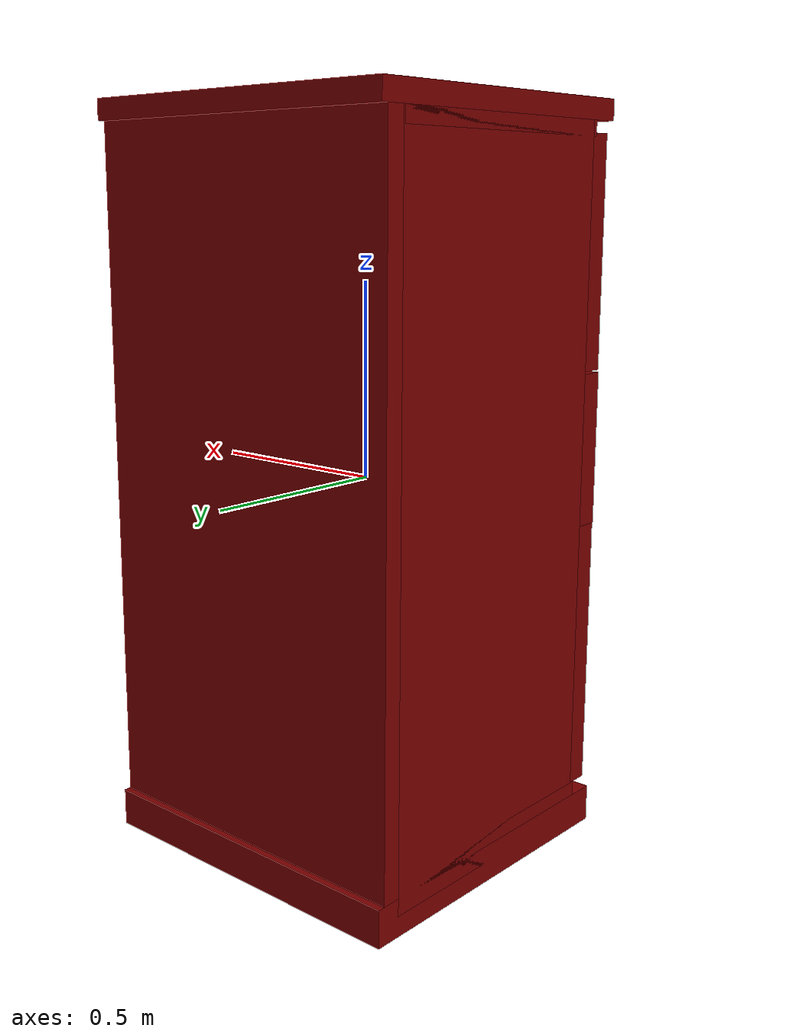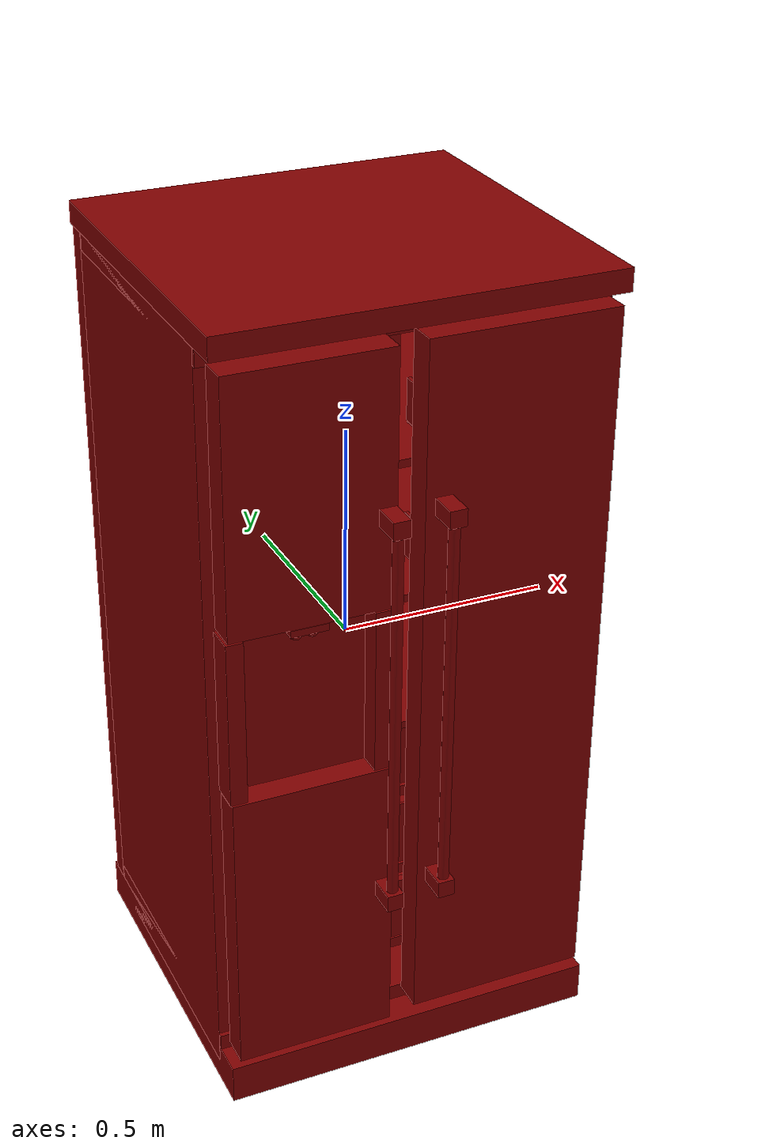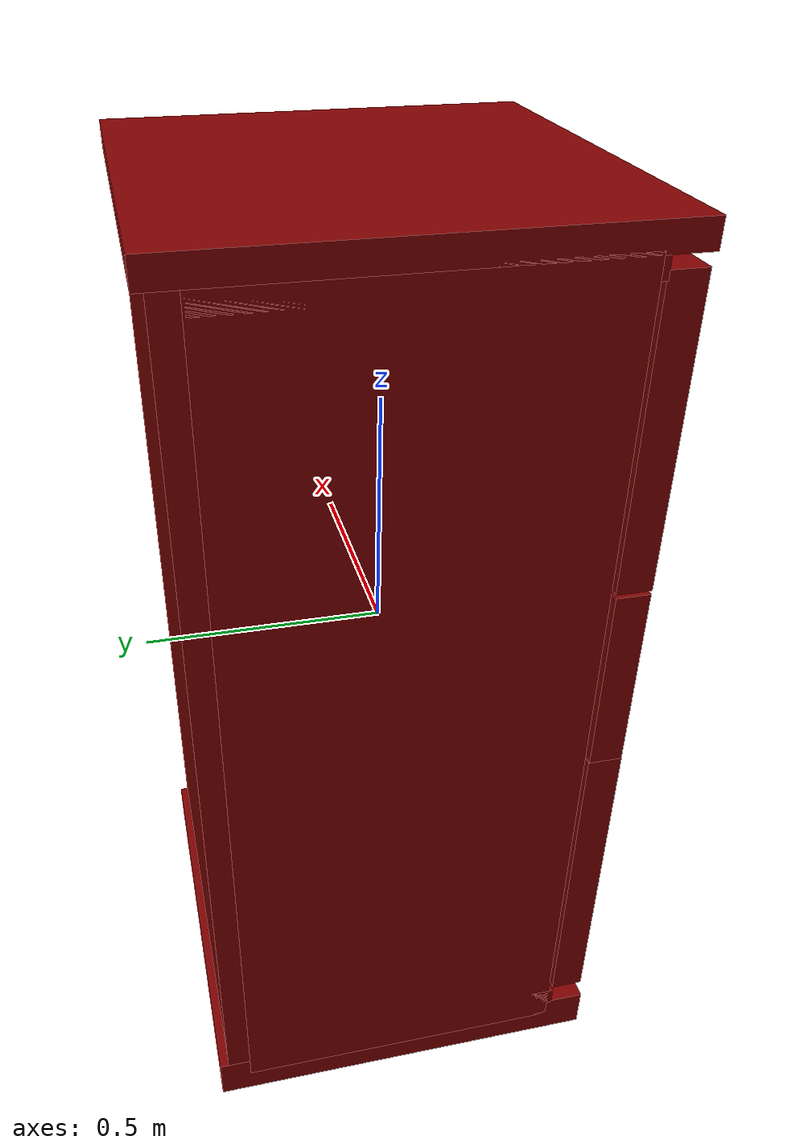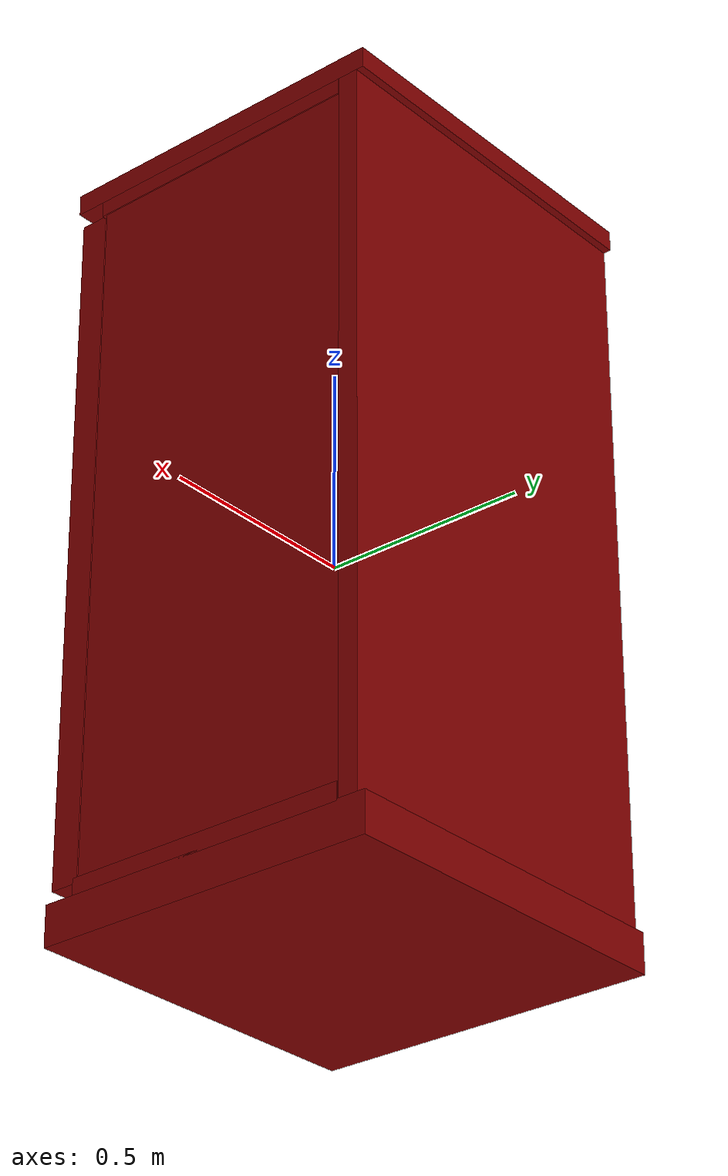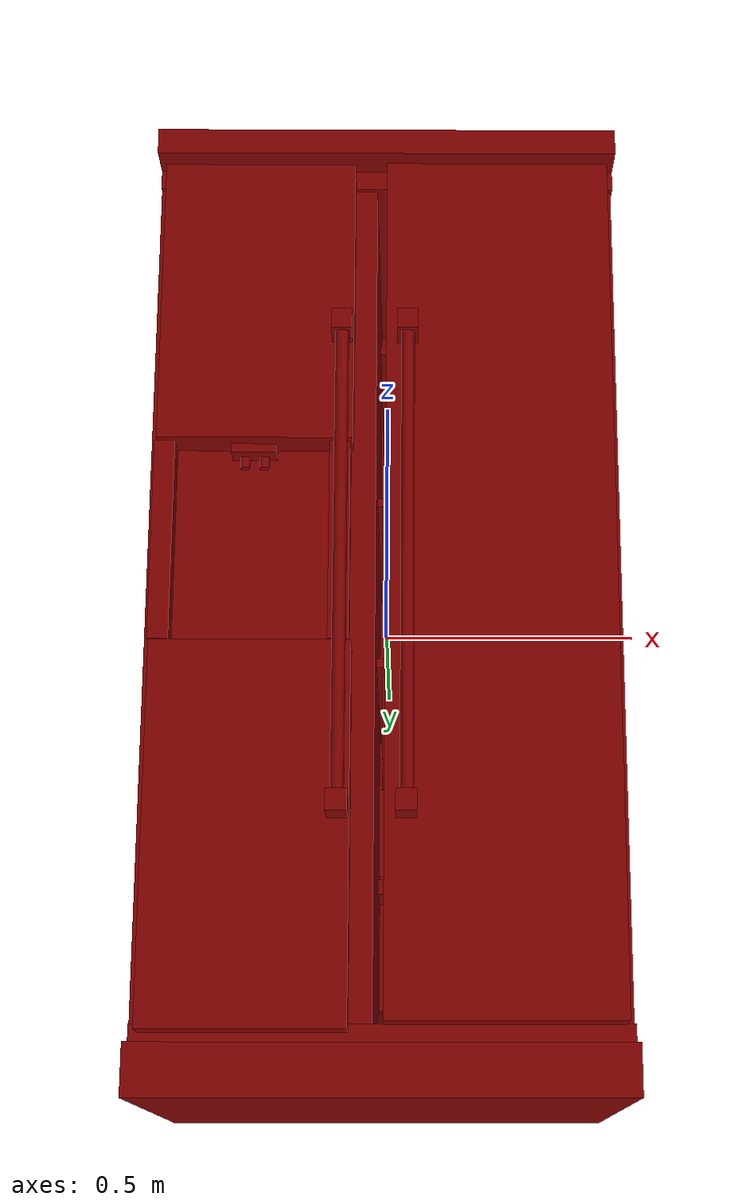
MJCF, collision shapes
<mujoco model="model">
  <compiler angle="radian"/>
  <asset>
    <mesh file="visuals/Body001.obj" name="Body001_vis"/>
    <mesh file="visuals/Body001_Clear.obj" name="Body001_Clear_vis"/>
    <mesh file="visuals/Door001.obj" name="Door001_vis"/>
    <mesh file="visuals/Door001_Clear.obj" name="Door001_Clear_vis"/>
    <mesh file="visuals/Door002.obj" name="Door002_vis"/>
    <mesh file="visuals/Door002_Clear.obj" name="Door002_Clear_vis"/>
    <mesh file="visuals/Drawer001.obj" name="Drawer001_vis"/>
    <mesh file="visuals/Drawer001_Clear.obj" name="Drawer001_Clear_vis"/>
    <mesh file="visuals/Drawer002.obj" name="Drawer002_vis"/>
    <mesh file="visuals/Drawer002_Clear.obj" name="Drawer002_Clear_vis"/>
    <mesh file="visuals/Drawer003.obj" name="Drawer003_vis"/>
    <mesh file="visuals/Drawer003_Clear.obj" name="Drawer003_Clear_vis"/>
    <mesh file="visuals/Drawer004.obj" name="Drawer004_vis"/>
    <mesh file="visuals/Drawer004_Clear.obj" name="Drawer004_Clear_vis"/>
    <mesh file="visuals/Drawer005.obj" name="Drawer005_vis"/>
    <mesh file="visuals/Drawer005_Clear.obj" name="Drawer005_Clear_vis"/>
    <texture file="visuals/T_BC001.png" name="Body001_material" type="2d"/>
    <material name="Body001_material" rgba="1 1 1 1.0" texture="Body001_material" shininess="3" specular="3"/>
    <texture file="visuals/T_BC001.png" name="Body001_Clear_material" type="2d"/>
    <material name="Body001_Clear_material" rgba="1 1 1 0.25" texture="Body001_Clear_material" shininess="2" specular="2"/>
    <texture file="visuals/T_BC001.png" name="Door001_material" type="2d"/>
    <material name="Door001_material" rgba="1 1 1 1.0" texture="Door001_material" shininess="3" specular="3"/>
    <texture file="visuals/T_BC001.png" name="Door001_Clear_material" type="2d"/>
    <material name="Door001_Clear_material" rgba="1 1 1 0.25" texture="Door001_Clear_material" shininess="1" specular="1"/>
    <texture file="visuals/T_BC001.png" name="Door002_material" type="2d"/>
    <material name="Door002_material" rgba="1 1 1 1.0" texture="Door002_material" shininess="3" specular="3"/>
    <texture file="visuals/T_BC001.png" name="Door002_Clear_material" type="2d"/>
    <material name="Door002_Clear_material" rgba="1 1 1 0.25" texture="Door002_Clear_material" shininess="1" specular="1"/>
    <texture file="visuals/T_BC001.png" name="Drawer001_material" type="2d"/>
    <material name="Drawer001_material" rgba="1 1 1 1.0" texture="Drawer001_material" shininess="2" specular="2"/>
    <texture file="visuals/T_BC001.png" name="Drawer001_Clear_material" type="2d"/>
    <material name="Drawer001_Clear_material" rgba="1 1 1 0.25" texture="Drawer001_Clear_material" shininess="1" specular="1"/>
    <texture file="visuals/T_BC001.png" name="Drawer002_material" type="2d"/>
    <material name="Drawer002_material" rgba="1 1 1 1.0" texture="Drawer002_material" shininess="2" specular="2"/>
    <texture file="visuals/T_BC001.png" name="Drawer002_Clear_material" type="2d"/>
    <material name="Drawer002_Clear_material" rgba="1 1 1 0.25" texture="Drawer002_Clear_material" shininess="1" specular="1"/>
    <texture file="visuals/T_BC001.png" name="Drawer003_material" type="2d"/>
    <material name="Drawer003_material" rgba="1 1 1 1.0" texture="Drawer003_material" shininess="2" specular="2"/>
    <texture file="visuals/T_BC001.png" name="Drawer003_Clear_material" type="2d"/>
    <material name="Drawer003_Clear_material" rgba="1 1 1 0.25" texture="Drawer003_Clear_material" shininess="1" specular="1"/>
    <texture file="visuals/T_BC001.png" name="Drawer004_material" type="2d"/>
    <material name="Drawer004_material" rgba="1 1 1 1.0" texture="Drawer004_material" shininess="2" specular="2"/>
    <texture file="visuals/T_BC001.png" name="Drawer004_Clear_material" type="2d"/>
    <material name="Drawer004_Clear_material" rgba="1 1 1 0.25" texture="Drawer004_Clear_material" shininess="1" specular="1"/>
    <texture file="visuals/T_BC001.png" name="Drawer005_material" type="2d"/>
    <material name="Drawer005_material" rgba="1 1 1 1.0" texture="Drawer005_material" shininess="2" specular="2"/>
    <texture file="visuals/T_BC001.png" name="Drawer005_Clear_material" type="2d"/>
    <material name="Drawer005_Clear_material" rgba="1 1 1 0.25" texture="Drawer005_Clear_material" shininess="1" specular="1"/>
  </asset>
  <default>
    <default class="visual">
      <geom conaffinity="0" contype="0" group="1" type="mesh"/>
    </default>
    <default class="collision">
      <geom group="0" rgba="0.5 0 0 0.5"/>
    </default>
    <default class="spawn">
      <geom group="0" rgba="1 1 1 0.5" contype="0" conaffinity="0"/>
      <site group="0" rgba="1 1 1 0.5"/>
    </default>
    <default class="region">
      <geom group="1" conaffinity="0" contype="0" rgba="0 1 0 0"/>
    </default>
  </default>
  <worldbody>
    <body>
      <body name="object">
        <geom mesh="Body001_vis" type="mesh" solimp="0.998 0.998 0.001" solref="0.001 1" density="100" friction="0.95 0.3 0.1" class="visual" material="Body001_material"/>
        <geom class="collision" type="box" pos="-3.574727088562213e-05 0.4180082678794861 -0.0028153115417808294" size="0.451770544052124 0.024895135313272476 0.938129723072052" quat="1.0 0.0 0.0 0.0"/>
        <geom class="collision" type="box" pos="-3.574727088562213e-05 0.035673126578330994 0.9094570875167847" size="0.45177221298217773 0.42544612288475037 0.025857482105493546" quat="1.0 0.0 0.0 0.0"/>
        <geom class="collision" type="box" pos="-3.574727088562213e-05 0.03566867113113403 -0.8937699794769287" size="0.45177221298217773 0.4254537522792816 0.047671034932136536" quat="1.0 0.0 0.0 0.0"/>
        <geom class="collision" type="box" pos="-0.42626821994781494 0.045118656009435654 0.0" size="0.025539742782711983 0.34963005781173706 0.8898904919624329" quat="1.0 0.0 0.0 0.0"/>
        <geom class="collision" type="box" pos="-0.04532779008150101 0.045118656009435654 0.0" size="0.02610357291996479 0.34963005781173706 0.8898904919624329" quat="1.0 0.0 0.0 0.0"/>
        <geom class="collision" type="box" pos="0.42271581292152405 0.045118656009435654 0.0" size="0.02610357291996479 0.34963005781173706 0.8898904919624329" quat="1.0 0.0 0.0 0.0"/>
        <geom class="collision" type="box" pos="-3.574727088562213e-05 0.03696683421730995 -0.8292543888092041" size="0.45177221298217773 0.35299330949783325 0.021169643849134445" quat="1.0 0.0 0.0 0.0"/>
        <geom class="collision" type="box" pos="-3.574727088562213e-05 0.03696683421730995 0.8663995265960693" size="0.45177221298217773 0.35299330949783325 0.021169649437069893" quat="1.0 0.0 0.0 0.0"/>
        <body name="Body001_Clear">
          <geom mesh="Body001_Clear_vis" type="mesh" solimp="0.998 0.998 0.001" solref="0.001 1" density="100" friction="0.95 0.3 0.1" class="visual" material="Body001_Clear_material"/>
          <geom class="collision" type="box" pos="-0.2327532321214676 0.07044325768947601 0.5239828824996948" size="0.15743544697761536 0.31518930196762085 0.00892995297908783" quat="1.0 0.0 0.0 0.0"/>
          <geom class="collision" type="box" pos="-0.2371075600385666 0.06846123188734055 0.18351960182189941" size="0.16178977489471436 0.31717121601104736 0.007833733223378658" quat="1.0 0.0 0.0 0.0"/>
          <geom class="collision" type="box" pos="-0.2327532321214676 0.07632682472467422 -0.3329799473285675" size="0.15743544697761536 0.30930548906326294 0.0036680845078080893" quat="1.0 0.0 0.0 0.0"/>
          <geom class="collision" type="box" pos="0.18661412596702576 0.07020843774080276 -0.12300799787044525" size="0.20260027050971985 0.3154236972332001 0.008524428121745586" quat="1.0 0.0 0.0 0.0"/>
          <geom class="collision" type="box" pos="0.1887836456298828 0.07026404142379761 0.5248534083366394" size="0.2004307508468628 0.3153679668903351 0.00923128705471754" quat="1.0 0.0 0.0 0.0"/>
          <geom class="collision" type="box" pos="0.18661412596702576 0.07020843774080276 0.20216870307922363" size="0.20260027050971985 0.3154236972332001 0.008524428121745586" quat="1.0 0.0 0.0 0.0"/>
        </body>
        <body name="Door001">
          <joint axis="0.0 0.0 -1.0" pos="-0.414893239736557 -0.3575732707977295 0.017313480377197266" limited="true" name="Door001_joint" range="0.0 1.5707963267948966" type="hinge" damping="1" frictionloss="1" armature=".01" stiffness="0.05"/>
          <geom mesh="Door001_vis" type="mesh" solimp="0.998 0.998 0.001" solref="0.001 1" density="100" friction="0.95 0.3 0.1" class="visual" material="Door001_material"/>
          <geom class="collision" type="box" pos="-0.24715225398540497 -0.35859963297843933 -0.4716695249080658" size="0.1857484132051468 0.03511670231819153 0.352693647146225" quat="1.0 0.0 0.0 0.0"/>
          <geom class="collision" type="box" pos="-0.24715225398540497 -0.3585893213748932 0.5669393539428711" size="0.18575069308280945 0.035106416791677475 0.2884162366390228" quat="1.0 0.0 0.0 0.0"/>
          <geom class="collision" type="box" pos="-0.41679680347442627 -0.35731759667396545 0.07822703570127487" size="0.01949378475546837 0.033834218978881836 0.1951233148574829" quat="1.0 0.0 0.0 0.0"/>
          <geom class="collision" type="box" pos="-0.08572738617658615 -0.35731759667396545 0.07822703570127487" size="0.019493788480758667 0.033834222704172134 0.1951233446598053" quat="1.0 0.0 0.0 0.0"/>
          <geom class="collision" type="box" pos="-0.25087979435920715 -0.3297492265701294 0.07822703570127487" size="0.150712788105011 0.007263421546667814 0.19512563943862915" quat="1.0 0.0 0.0 0.0"/>
          <geom class="collision" type="box" pos="-0.24829870462417603 -0.2896501123905182 0.6265910863876343" size="0.14128069579601288 0.034703534096479416 0.004773599095642567" quat="1.0 0.0 0.0 0.0"/>
          <geom class="collision" type="box" pos="-0.11297552287578583 -0.2896501123905182 0.6709846258163452" size="0.005090788006782532 0.03470392897725105 0.05093911662697792" quat="1.0 0.0 0.0 0.0"/>
          <geom class="collision" type="box" pos="-0.38325318694114685 -0.2896501123905182 0.67098468542099" size="0.004545565228909254 0.03470395877957344 0.05093913525342941" quat="1.0 0.0 0.0 0.0"/>
          <geom class="collision" type="box" pos="-0.08284567296504974 -0.41582635045051575 0.4938046634197235" size="0.019493799656629562 0.046120431274175644 0.020017951726913452" quat="1.0 0.0 0.0 0.0"/>
          <geom class="collision" type="box" pos="-0.08284567296504974 -0.41582635045051575 -0.43190082907676697" size="0.01949380338191986 0.04612043872475624 0.020017951726913452" quat="1.0 0.0 0.0 0.0"/>
          <geom class="collision" type="box" pos="-0.24867546558380127 -0.3481717109680176 0.26166754961013794" size="0.04286985099315643 0.03458135947585106 0.008216452784836292" quat="1.0 0.0 0.0 0.0"/>
          <geom class="collision" type="cylinder" pos="-0.0821428969502449 -0.44111940264701843 0.030123282223939896" size="0.012613581493496895 0.449203759431839" quat="1.0 0.0 0.0 0.0"/>
          <geom class="collision" type="cylinder" pos="-0.22978299856185913 -0.3494099974632263 0.24432069063186646" size="0.009704225696623325 0.012385389767587185" quat="1.0 0.0 0.0 0.0"/>
          <geom class="collision" type="cylinder" pos="-0.26655343174934387 -0.3494099974632263 0.24432069063186646" size="0.009704225696623325 0.012385389767587185" quat="1.0 0.0 0.0 0.0"/>
          <body name="Door001_Clear">
            <geom mesh="Door001_Clear_vis" type="mesh" solimp="0.998 0.998 0.001" solref="0.001 1" density="100" friction="0.95 0.3 0.1" class="visual" material="Door001_Clear_material"/>
            <geom class="collision" type="box" pos="-0.24728763103485107 -0.256744921207428 0.6854457259178162" size="0.1140243336558342 0.003913906402885914 0.03993138670921326" quat="1.0 0.0 0.0 0.0"/>
          </body>
        </body>
        <body name="Door002">
          <joint axis="0.0 0.0 1.0" pos="0.41606083512306213 -0.3575720489025116 0.0173148512840271" limited="true" name="Door002_joint" range="0.0 1.5707963267948966" type="hinge" damping="1" frictionloss="1" armature=".01" stiffness="0.05"/>
          <geom mesh="Door002_vis" type="mesh" solimp="0.998 0.998 0.001" solref="0.001 1" density="100" friction="0.95 0.3 0.1" class="visual" material="Door002_material"/>
          <geom class="collision" type="box" pos="0.21729324758052826 -0.358371764421463 0.02460833638906479" size="0.21605758368968964 0.03488840535283089 0.8342260718345642" quat="1.0 0.0 0.0 0.0"/>
          <geom class="collision" type="cylinder" pos="0.042510077357292175 -0.44111940264701843 0.030123282223939896" size="0.012613581493496895 0.449203759431839" quat="1.0 0.0 0.0 0.0"/>
          <geom class="collision" type="box" pos="0.04180731624364853 -0.41582635045051575 -0.43190082907676697" size="0.019493814557790756 0.04612046480178833 0.020017951726913452" quat="1.0 0.0 0.0 0.0"/>
          <geom class="collision" type="box" pos="0.04180731624364853 -0.41582635045051575 0.4938046634197235" size="0.019493818283081055 0.04612047225236893 0.020017951726913452" quat="1.0 0.0 0.0 0.0"/>
          <geom class="collision" type="box" pos="0.2036997675895691 -0.2896501123905182 0.31993919610977173" size="0.18109509348869324 0.03470358997583389 0.004773653578013182" quat="1.0 0.0 0.0 0.0"/>
          <geom class="collision" type="box" pos="0.025358308106660843 -0.2896501123905182 0.3672685921192169" size="0.004545565228909254 0.03470395877957344 0.05049070343375206" quat="1.0 0.0 0.0 0.0"/>
          <geom class="collision" type="box" pos="0.38523954153060913 -0.2896501123905182 0.36726853251457214" size="0.005090788006782532 0.03470392897725105 0.05049068480730057" quat="1.0 0.0 0.0 0.0"/>
          <geom class="collision" type="box" pos="0.2036997675895691 -0.2896501123905182 0.6278215646743774" size="0.18109509348869324 0.034703608602285385 0.004773653578013182" quat="1.0 0.0 0.0 0.0"/>
          <geom class="collision" type="box" pos="0.025358308106660843 -0.2896501123905182 0.6742992997169495" size="0.004545565228909254 0.03470395505428314 0.04705320671200752" quat="1.0 0.0 0.0 0.0"/>
          <geom class="collision" type="box" pos="0.38523954153060913 -0.2896501421928406 0.6742992401123047" size="0.0050908783450722694 0.0347045436501503 0.047054022550582886" quat="1.0 0.0 0.0 0.0"/>
          <body name="Door002_Clear">
            <geom mesh="Door002_Clear_vis" type="mesh" solimp="0.998 0.998 0.001" solref="0.001 1" density="100" friction="0.95 0.3 0.1" class="visual" material="Door002_Clear_material"/>
            <geom class="collision" type="box" pos="0.2040991485118866 -0.25648218393325806 0.686622679233551" size="0.15501025319099426 0.0036017941311001778 0.03938661888241768" quat="1.0 0.0 0.0 0.0"/>
            <geom class="collision" type="box" pos="0.2040991485118866 -0.25648218393325806 0.38032856583595276" size="0.15501028299331665 0.0036017941311001778 0.039386626332998276" quat="1.0 0.0 0.0 0.0"/>
          </body>
        </body>
        <body name="Drawer001">
          <joint axis="0.0 -1.0 0.0" pos="0.17545726895332336 0.08571173250675201 -0.2386978268623352" limited="true" name="Drawer001_joint" range="0.0 0.5" type="slide" damping="1" frictionloss="1" armature=".01" stiffness="0.05"/>
          <geom mesh="Drawer001_vis" type="mesh" solimp="0.998 0.998 0.001" solref="0.001 1" density="100" friction="0.95 0.3 0.1" class="visual" material="Drawer001_material"/>
          <geom class="collision" type="box" pos="0.35556286573410034 0.08712188154459 -0.23790796101093292" size="0.010213085450232029 0.29665863513946533 0.09808523207902908" quat="1.0 0.0 0.0 0.0"/>
          <geom class="collision" type="box" pos="0.008175898343324661 0.08712188154459 -0.23790796101093292" size="0.010213087312877178 0.29665863513946533 0.09808525443077087" quat="1.0 0.0 0.0 0.0"/>
          <geom class="collision" type="box" pos="0.18010224401950836 0.08421262353658676 -0.3247988224029541" size="0.1852412074804306 0.2995651364326477 0.013362164609134197" quat="1.0 0.0 0.0 0.0"/>
          <body name="Drawer001_Clear">
            <geom mesh="Drawer001_Clear_vis" type="mesh" solimp="0.998 0.998 0.001" solref="0.001 1" density="100" friction="0.95 0.3 0.1" class="visual" material="Drawer001_Clear_material"/>
            <geom class="collision" type="box" pos="0.1693754494190216 0.3764946460723877 -0.2210853546857834" size="0.17423062026500702 0.003362497314810753 0.08217127621173859" quat="1.0 0.0 0.0 0.0"/>
            <geom class="collision" type="box" pos="0.1742350310087204 -0.2119722068309784 -0.2210853546857834" size="0.17909005284309387 0.00336249778047204 0.08217129111289978" quat="1.0 0.0 0.0 0.0"/>
          </body>
        </body>
        <body name="Drawer002">
          <joint axis="0.0 -1.0 0.0" pos="0.17544201016426086 0.08571161329746246 -0.4610562324523926" limited="true" name="Drawer002_joint" range="0.0 0.5" type="slide" damping="1" frictionloss="1" armature=".01" stiffness="0.05"/>
          <geom mesh="Drawer002_vis" type="mesh" solimp="0.998 0.998 0.001" solref="0.001 1" density="100" friction="0.95 0.3 0.1" class="visual" material="Drawer002_material"/>
          <geom class="collision" type="box" pos="0.17514702677726746 0.08439865708351135 -0.5471969246864319" size="0.18524128198623657 0.2993791699409485 0.013362164609134197" quat="1.0 0.0 0.0 0.0"/>
          <geom class="collision" type="box" pos="0.001611456274986267 0.08712188154459 -0.4603060483932495" size="0.010213092900812626 0.29665863513946533 0.09808530658483505" quat="1.0 0.0 0.0 0.0"/>
          <geom class="collision" type="box" pos="0.35201629996299744 0.08712188154459 -0.4603060483932495" size="0.010213094763457775 0.29665863513946533 0.09808532148599625" quat="1.0 0.0 0.0 0.0"/>
          <body name="Drawer002_Clear">
            <geom mesh="Drawer002_Clear_vis" type="mesh" solimp="0.998 0.998 0.001" solref="0.001 1" density="100" friction="0.95 0.3 0.1" class="visual" material="Drawer002_Clear_material"/>
            <geom class="collision" type="box" pos="0.16581419110298157 -0.2119722068309784 -0.44514644145965576" size="0.17585578560829163 0.003362498478963971 0.08217130601406097" quat="1.0 0.0 0.0 0.0"/>
            <geom class="collision" type="box" pos="0.15211044251918793 0.3842984437942505 -0.44514644145965576" size="0.16215282678604126 0.003362499177455902 0.08217132091522217" quat="1.0 0.0 0.0 0.0"/>
          </body>
        </body>
        <body name="Drawer003">
          <joint axis="0.0 -1.0 0.0" pos="-0.21958966553211212 0.08571018278598785 -0.46107035875320435" limited="true" name="Drawer003_joint" range="0.0 0.5" type="slide" damping="1" frictionloss="1" armature=".01" stiffness="0.05"/>
          <geom mesh="Drawer003_vis" type="mesh" solimp="0.998 0.998 0.001" solref="0.001 1" density="100" friction="0.95 0.3 0.1" class="visual" material="Drawer003_material"/>
          <geom class="collision" type="box" pos="-0.08386829495429993 0.07277664542198181 -0.4603060483932495" size="0.010213102214038372 0.29665863513946533 0.09808539599180222" quat="1.0 0.0 0.0 0.0"/>
          <geom class="collision" type="box" pos="-0.3546818494796753 0.07277664542198181 -0.4603060483932495" size="0.010213104076683521 0.29665863513946533 0.09808541089296341" quat="1.0 0.0 0.0 0.0"/>
          <geom class="collision" type="box" pos="-0.22234895825386047 0.07277663052082062 -0.5471969246864319" size="0.14340153336524963 0.2966586649417877 0.013362039811909199" quat="1.0 0.0 0.0 0.0"/>
          <body name="Drawer003_Clear">
            <geom mesh="Drawer003_Clear_vis" type="mesh" solimp="0.998 0.998 0.001" solref="0.001 1" density="100" friction="0.95 0.3 0.1" class="visual" material="Drawer003_Clear_material"/>
            <geom class="collision" type="box" pos="-0.21919865906238556 -0.22631749510765076 -0.44439202547073364" size="0.12486590445041656 0.0033625157084316015 0.0839683786034584" quat="1.0 0.0 0.0 0.0"/>
            <geom class="collision" type="box" pos="-0.21919865906238556 0.3751397132873535 -0.44439202547073364" size="0.12486590445041656 0.0033625157084316015 0.0839683786034584" quat="1.0 0.0 0.0 0.0"/>
          </body>
        </body>
        <body name="Drawer004">
          <joint axis="0.0 -1.0 0.0" pos="0.1754477322101593 0.08571018278598785 -0.6834186911582947" limited="true" name="Drawer004_joint" range="0.0 0.5" type="slide" damping="1" frictionloss="1" armature=".01" stiffness="0.05"/>
          <geom mesh="Drawer004_vis" type="mesh" solimp="0.998 0.998 0.001" solref="0.001 1" density="100" friction="0.95 0.3 0.1" class="visual" material="Drawer004_material"/>
          <geom class="collision" type="box" pos="0.35627177357673645 0.0771859735250473 -0.678084135055542" size="0.010213096626102924 0.29224932193756104 0.09808534383773804" quat="1.0 0.0 0.0 0.0"/>
          <geom class="collision" type="box" pos="0.002265164628624916 0.07628963887691498 -0.678084135055542" size="0.010213098488748074 0.29314565658569336 0.09808535873889923" quat="1.0 0.0 0.0 0.0"/>
          <geom class="collision" type="box" pos="0.18242888152599335 0.07628963887691498 -0.7649750113487244" size="0.1852416694164276 0.29314327239990234 0.013362164609134197" quat="1.0 0.0 0.0 0.0"/>
          <body name="Drawer004_Clear">
            <geom mesh="Drawer004_Clear_vis" type="mesh" solimp="0.998 0.998 0.001" solref="0.001 1" density="100" friction="0.95 0.3 0.1" class="visual" material="Drawer004_Clear_material"/>
            <geom class="collision" type="box" pos="0.17849116027355194 -0.2037419080734253 -0.6684530973434448" size="0.1696966141462326 0.009370065294206142 0.08217133581638336" quat="1.0 0.0 0.0 0.0"/>
            <geom class="collision" type="box" pos="0.15871365368366241 0.3699532151222229 -0.6684530973434448" size="0.16215288639068604 0.0033625003416091204 0.08217135071754456" quat="1.0 0.0 0.0 0.0"/>
          </body>
        </body>
        <body name="Drawer005">
          <joint axis="0.0 -1.0 0.0" pos="-0.2195877581834793 0.08571161329746246 -0.6834301948547363" limited="true" name="Drawer005_joint" range="0.0 0.5" type="slide" damping="1" frictionloss="1" armature=".01" stiffness="0.05"/>
          <geom mesh="Drawer005_vis" type="mesh" solimp="0.998 0.998 0.001" solref="0.001 1" density="100" friction="0.95 0.3 0.1" class="visual" material="Drawer005_material"/>
          <geom class="collision" type="box" pos="-0.2180977314710617 0.07664361596107483 -0.7688060998916626" size="0.14340153336524963 0.2927916646003723 0.013362043537199497" quat="1.0 0.0 0.0 0.0"/>
          <geom class="collision" type="box" pos="-0.35043060779571533 0.07654658704996109 -0.6819152235984802" size="0.010213109664618969 0.29288870096206665 0.09808546304702759" quat="1.0 0.0 0.0 0.0"/>
          <geom class="collision" type="box" pos="-0.08482231944799423 0.07624107599258423 -0.6819152235984802" size="0.010213111527264118 0.2931942045688629 0.09808547794818878" quat="1.0 0.0 0.0 0.0"/>
          <body name="Drawer005_Clear">
            <geom mesh="Drawer005_Clear_vis" type="mesh" solimp="0.998 0.998 0.001" solref="0.001 1" density="100" friction="0.95 0.3 0.1" class="visual" material="Drawer005_Clear_material"/>
            <geom class="collision" type="box" pos="-0.21932147443294525 -0.2043299525976181 -0.6692607402801514" size="0.12007889896631241 0.009934494271874428 0.08441653102636337" quat="1.0 0.0 0.0 0.0"/>
            <geom class="collision" type="box" pos="-0.21932147443294525 0.3699532747268677 -0.6692607402801514" size="0.12007889896631241 0.003362502669915557 0.08441653102636337" quat="1.0 0.0 0.0 0.0"/>
          </body>
        </body>
        <geom class="region" name="reg_main" type="box" pos="-3.5740435123443604e-05 0.03423166275024414 -0.0030632615089416504" size="0.4517722427845001 0.4268907308578491 0.9383777379989624"/>
      </body>
    </body>
  </worldbody>
  <actuator>
    <motor name="Door001_joint_actuator" joint="Door001_joint" gear="50"/>
    <motor name="Door002_joint_actuator" joint="Door002_joint" gear="50"/>
    <motor name="Drawer001_joint_actuator" joint="Drawer001_joint" gear="50"/>
    <motor name="Drawer002_joint_actuator" joint="Drawer002_joint" gear="50"/>
    <motor name="Drawer003_joint_actuator" joint="Drawer003_joint" gear="50"/>
    <motor name="Drawer004_joint_actuator" joint="Drawer004_joint" gear="50"/>
    <motor name="Drawer005_joint_actuator" joint="Drawer005_joint" gear="50"/>
  </actuator>
</mujoco>
